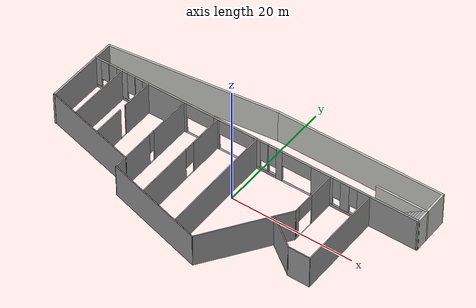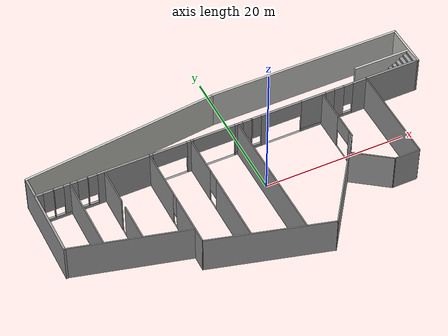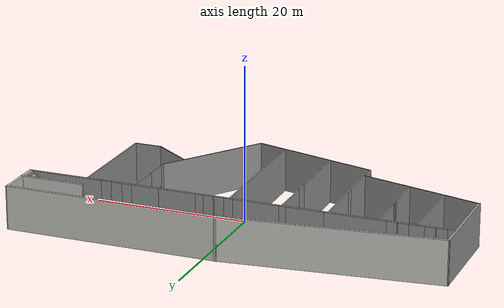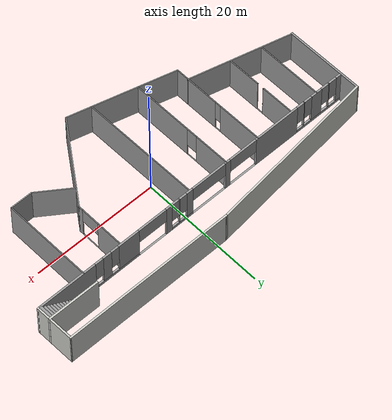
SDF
<?xml version='1.0'?>
<sdf version='1.7'>
  <model name='kmac'>
    <pose>-1.47936 -0.081565 0 0 -0 0</pose>
    <link name='Stairs_0'>
      <visual name='Stairs_0_Visual_0'>
        <pose>19.7778 8.04534 0.186667 0 -0 1.5708</pose>
        <geometry>
          <box>
            <size>2.003 0.5168 0.373333</size>
          </box>
        </geometry>
        <material>
          <script>
            <uri>file://media/materials/scripts/gazebo.material</uri>
            <name>Gazebo/Grey</name>
          </script>
          <ambient>0.870588 0.866667 0.854902 1</ambient>
        </material>
        <meta>
          <layer>0</layer>
        </meta>
      </visual>
      <collision name='Stairs_0_Collision_0'>
        <geometry>
          <box>
            <size>2.003 0.5168 0.373333</size>
          </box>
        </geometry>
        <pose>19.7778 8.04534 0.186667 0 -0 1.5708</pose>
      </collision>
      <visual name='Stairs_0_Visual_1'>
        <pose>20.2946 8.04534 0.56 0 -0 1.5708</pose>
        <geometry>
          <box>
            <size>2.003 0.5168 0.373333</size>
          </box>
        </geometry>
        <material>
          <script>
            <uri>file://media/materials/scripts/gazebo.material</uri>
            <name>Gazebo/Grey</name>
          </script>
          <ambient>0.870588 0.866667 0.854902 1</ambient>
        </material>
        <meta>
          <layer>0</layer>
        </meta>
      </visual>
      <collision name='Stairs_0_Collision_1'>
        <geometry>
          <box>
            <size>2.003 0.5168 0.373333</size>
          </box>
        </geometry>
        <pose>20.2946 8.04534 0.56 0 -0 1.5708</pose>
      </collision>
      <visual name='Stairs_0_Visual_2'>
        <pose>20.8114 8.04534 0.933333 0 -0 1.5708</pose>
        <geometry>
          <box>
            <size>2.003 0.5168 0.373333</size>
          </box>
        </geometry>
        <material>
          <script>
            <uri>file://media/materials/scripts/gazebo.material</uri>
            <name>Gazebo/Grey</name>
          </script>
          <ambient>0.870588 0.866667 0.854902 1</ambient>
        </material>
        <meta>
          <layer>0</layer>
        </meta>
      </visual>
      <collision name='Stairs_0_Collision_2'>
        <geometry>
          <box>
            <size>2.003 0.5168 0.373333</size>
          </box>
        </geometry>
        <pose>20.8114 8.04534 0.933333 0 -0 1.5708</pose>
      </collision>
      <visual name='Stairs_0_Visual_3'>
        <pose>21.3282 8.04534 1.30667 0 -0 1.5708</pose>
        <geometry>
          <box>
            <size>2.003 0.5168 0.373333</size>
          </box>
        </geometry>
        <material>
          <script>
            <uri>file://media/materials/scripts/gazebo.material</uri>
            <name>Gazebo/Grey</name>
          </script>
          <ambient>0.870588 0.866667 0.854902 1</ambient>
        </material>
        <meta>
          <layer>0</layer>
        </meta>
      </visual>
      <collision name='Stairs_0_Collision_3'>
        <geometry>
          <box>
            <size>2.003 0.5168 0.373333</size>
          </box>
        </geometry>
        <pose>21.3282 8.04534 1.30667 0 -0 1.5708</pose>
      </collision>
      <visual name='Stairs_0_Visual_4'>
        <pose>21.845 8.04534 1.68 0 -0 1.5708</pose>
        <geometry>
          <box>
            <size>2.003 0.5168 0.373333</size>
          </box>
        </geometry>
        <material>
          <script>
            <uri>file://media/materials/scripts/gazebo.material</uri>
            <name>Gazebo/Grey</name>
          </script>
          <ambient>0.870588 0.866667 0.854902 1</ambient>
        </material>
        <meta>
          <layer>0</layer>
        </meta>
      </visual>
      <collision name='Stairs_0_Collision_4'>
        <geometry>
          <box>
            <size>2.003 0.5168 0.373333</size>
          </box>
        </geometry>
        <pose>21.845 8.04534 1.68 0 -0 1.5708</pose>
      </collision>
      <visual name='Stairs_0_Visual_5'>
        <pose>22.3618 8.04535 2.05333 0 -0 1.5708</pose>
        <geometry>
          <box>
            <size>2.003 0.5168 0.373333</size>
          </box>
        </geometry>
        <material>
          <script>
            <uri>file://media/materials/scripts/gazebo.material</uri>
            <name>Gazebo/Grey</name>
          </script>
          <ambient>0.870588 0.866667 0.854902 1</ambient>
        </material>
        <meta>
          <layer>0</layer>
        </meta>
      </visual>
      <collision name='Stairs_0_Collision_5'>
        <geometry>
          <box>
            <size>2.003 0.5168 0.373333</size>
          </box>
        </geometry>
        <pose>22.3618 8.04535 2.05333 0 -0 1.5708</pose>
      </collision>
      <visual name='Stairs_0_Visual_6'>
        <pose>22.8786 8.04535 2.42667 0 -0 1.5708</pose>
        <geometry>
          <box>
            <size>2.003 0.5168 0.373333</size>
          </box>
        </geometry>
        <material>
          <script>
            <uri>file://media/materials/scripts/gazebo.material</uri>
            <name>Gazebo/Grey</name>
          </script>
          <ambient>0.870588 0.866667 0.854902 1</ambient>
        </material>
        <meta>
          <layer>0</layer>
        </meta>
      </visual>
      <collision name='Stairs_0_Collision_6'>
        <geometry>
          <box>
            <size>2.003 0.5168 0.373333</size>
          </box>
        </geometry>
        <pose>22.8786 8.04535 2.42667 0 -0 1.5708</pose>
      </collision>
      <visual name='Stairs_0_Visual_7'>
        <pose>23.3954 8.04535 2.8 0 -0 1.5708</pose>
        <geometry>
          <box>
            <size>2.003 0.5168 0.373333</size>
          </box>
        </geometry>
        <material>
          <script>
            <uri>file://media/materials/scripts/gazebo.material</uri>
            <name>Gazebo/Grey</name>
          </script>
          <ambient>0.870588 0.866667 0.854902 1</ambient>
        </material>
        <meta>
          <layer>0</layer>
        </meta>
      </visual>
      <collision name='Stairs_0_Collision_7'>
        <geometry>
          <box>
            <size>2.003 0.5168 0.373333</size>
          </box>
        </geometry>
        <pose>23.3954 8.04535 2.8 0 -0 1.5708</pose>
      </collision>
      <visual name='Stairs_0_Visual_8'>
        <pose>23.9122 8.04535 3.17333 0 -0 1.5708</pose>
        <geometry>
          <box>
            <size>2.003 0.5168 0.373333</size>
          </box>
        </geometry>
        <material>
          <script>
            <uri>file://media/materials/scripts/gazebo.material</uri>
            <name>Gazebo/Grey</name>
          </script>
          <ambient>0.870588 0.866667 0.854902 1</ambient>
        </material>
        <meta>
          <layer>0</layer>
        </meta>
      </visual>
      <collision name='Stairs_0_Collision_8'>
        <geometry>
          <box>
            <size>2.003 0.5168 0.373333</size>
          </box>
        </geometry>
        <pose>23.9122 8.04535 3.17333 0 -0 1.5708</pose>
      </collision>
      <visual name='Stairs_0_Visual_9'>
        <pose>24.429 8.04535 3.54667 0 -0 1.5708</pose>
        <geometry>
          <box>
            <size>2.003 0.5168 0.373333</size>
          </box>
        </geometry>
        <material>
          <script>
            <uri>file://media/materials/scripts/gazebo.material</uri>
            <name>Gazebo/Grey</name>
          </script>
          <ambient>0.870588 0.866667 0.854902 1</ambient>
        </material>
        <meta>
          <layer>0</layer>
        </meta>
      </visual>
      <collision name='Stairs_0_Collision_9'>
        <geometry>
          <box>
            <size>2.003 0.5168 0.373333</size>
          </box>
        </geometry>
        <pose>24.429 8.04535 3.54667 0 -0 1.5708</pose>
      </collision>
      <visual name='Stairs_0_Visual_10'>
        <pose>24.9458 8.04535 3.92 0 -0 1.5708</pose>
        <geometry>
          <box>
            <size>2.003 0.5168 0.373333</size>
          </box>
        </geometry>
        <material>
          <script>
            <uri>file://media/materials/scripts/gazebo.material</uri>
            <name>Gazebo/Grey</name>
          </script>
          <ambient>0.870588 0.866667 0.854902 1</ambient>
        </material>
        <meta>
          <layer>0</layer>
        </meta>
      </visual>
      <collision name='Stairs_0_Collision_10'>
        <geometry>
          <box>
            <size>2.003 0.5168 0.373333</size>
          </box>
        </geometry>
        <pose>24.9458 8.04535 3.92 0 -0 1.5708</pose>
      </collision>
      <visual name='Stairs_0_Visual_11'>
        <pose>25.4626 8.04535 4.29333 0 -0 1.5708</pose>
        <geometry>
          <box>
            <size>2.003 0.5168 0.373333</size>
          </box>
        </geometry>
        <material>
          <script>
            <uri>file://media/materials/scripts/gazebo.material</uri>
            <name>Gazebo/Grey</name>
          </script>
          <ambient>0.870588 0.866667 0.854902 1</ambient>
        </material>
        <meta>
          <layer>0</layer>
        </meta>
      </visual>
      <collision name='Stairs_0_Collision_11'>
        <geometry>
          <box>
            <size>2.003 0.5168 0.373333</size>
          </box>
        </geometry>
        <pose>25.4626 8.04535 4.29333 0 -0 1.5708</pose>
      </collision>
      <visual name='Stairs_0_Visual_12'>
        <pose>25.9794 8.04535 4.66667 0 -0 1.5708</pose>
        <geometry>
          <box>
            <size>2.003 0.5168 0.373333</size>
          </box>
        </geometry>
        <material>
          <script>
            <uri>file://media/materials/scripts/gazebo.material</uri>
            <name>Gazebo/Grey</name>
          </script>
          <ambient>0.870588 0.866667 0.854902 1</ambient>
        </material>
        <meta>
          <layer>0</layer>
        </meta>
      </visual>
      <collision name='Stairs_0_Collision_12'>
        <geometry>
          <box>
            <size>2.003 0.5168 0.373333</size>
          </box>
        </geometry>
        <pose>25.9794 8.04535 4.66667 0 -0 1.5708</pose>
      </collision>
      <visual name='Stairs_0_Visual_13'>
        <pose>26.4962 8.04535 5.04 0 -0 1.5708</pose>
        <geometry>
          <box>
            <size>2.003 0.5168 0.373333</size>
          </box>
        </geometry>
        <material>
          <script>
            <uri>file://media/materials/scripts/gazebo.material</uri>
            <name>Gazebo/Grey</name>
          </script>
          <ambient>0.870588 0.866667 0.854902 1</ambient>
        </material>
        <meta>
          <layer>0</layer>
        </meta>
      </visual>
      <collision name='Stairs_0_Collision_13'>
        <geometry>
          <box>
            <size>2.003 0.5168 0.373333</size>
          </box>
        </geometry>
        <pose>26.4962 8.04535 5.04 0 -0 1.5708</pose>
      </collision>
      <visual name='Stairs_0_Visual_14'>
        <pose>27.013 8.04535 5.41333 0 -0 1.5708</pose>
        <geometry>
          <box>
            <size>2.003 0.5168 0.373333</size>
          </box>
        </geometry>
        <material>
          <script>
            <uri>file://media/materials/scripts/gazebo.material</uri>
            <name>Gazebo/Grey</name>
          </script>
          <ambient>0.870588 0.866667 0.854902 1</ambient>
        </material>
        <meta>
          <layer>0</layer>
        </meta>
      </visual>
      <collision name='Stairs_0_Collision_14'>
        <geometry>
          <box>
            <size>2.003 0.5168 0.373333</size>
          </box>
        </geometry>
        <pose>27.013 8.04535 5.41333 0 -0 1.5708</pose>
      </collision>
    </link>
    <link name='Wall_0'>
      <collision name='Wall_0_Collision'>
        <geometry>
          <box>
            <size>12.75 0.3 5.6</size>
          </box>
        </geometry>
        <pose>0 0 2.8 0 -0 0</pose>
      </collision>
      <visual name='Wall_0_Visual'>
        <pose>0 0 2.8 0 -0 0</pose>
        <geometry>
          <box>
            <size>12.75 0.3 5.6</size>
          </box>
        </geometry>
        <material>
          <script>
            <uri>file://media/materials/scripts/gazebo.material</uri>
            <name>Gazebo/Grey</name>
          </script>
          <ambient>0.870588 0.866667 0.854902 1</ambient>
        </material>
        <meta>
          <layer>0</layer>
        </meta>
      </visual>
      <pose>-27.3226 3.61557 0 0 -0 -1.5708</pose>
    </link>
    <link name='Wall_11'>
      <collision name='Wall_11_Collision'>
        <geometry>
          <box>
            <size>14.25 0.15 5.6</size>
          </box>
        </geometry>
        <pose>0 0 2.8 0 -0 0</pose>
      </collision>
      <visual name='Wall_11_Visual'>
        <pose>0 0 2.8 0 -0 0</pose>
        <geometry>
          <box>
            <size>14.25 0.15 5.6</size>
          </box>
        </geometry>
        <material>
          <script>
            <uri>file://media/materials/scripts/gazebo.material</uri>
            <name>Gazebo/Grey</name>
          </script>
          <ambient>1 1 1 1</ambient>
        </material>
        <meta>
          <layer>0</layer>
        </meta>
      </visual>
      <pose>19.5414 -0.041435 0 0 -0 -1.5708</pose>
    </link>
    <link name='Wall_15'>
      <collision name='Wall_15_Collision'>
        <geometry>
          <box>
            <size>6.05535 0.15 5.6</size>
          </box>
        </geometry>
        <pose>0 0 2.8 0 -0 0</pose>
      </collision>
      <visual name='Wall_15_Visual'>
        <pose>0 0 2.8 0 -0 0</pose>
        <geometry>
          <box>
            <size>6.05535 0.15 5.6</size>
          </box>
        </geometry>
        <material>
          <script>
            <uri>file://media/materials/scripts/gazebo.material</uri>
            <name>Gazebo/Grey</name>
          </script>
          <ambient>0.870588 0.866667 0.854902 1</ambient>
        </material>
        <meta>
          <layer>0</layer>
        </meta>
      </visual>
      <pose>13.6484 -5.38943 0 0 -0 -0.62521</pose>
    </link>
    <link name='Wall_17'>
      <collision name='Wall_17_Collision'>
        <geometry>
          <box>
            <size>3.6 0.15 5.6</size>
          </box>
        </geometry>
        <pose>0 0 2.8 0 -0 0</pose>
      </collision>
      <visual name='Wall_17_Visual'>
        <pose>0 0 2.8 0 -0 0</pose>
        <geometry>
          <box>
            <size>3.6 0.15 5.6</size>
          </box>
        </geometry>
        <material>
          <script>
            <uri>file://media/materials/scripts/gazebo.material</uri>
            <name>Gazebo/Grey</name>
          </script>
          <ambient>1 1 1 1</ambient>
        </material>
        <meta>
          <layer>0</layer>
        </meta>
      </visual>
      <pose>17.7674 -7.11744 0 0 -0 0</pose>
    </link>
    <link name='Wall_2'>
      <collision name='Wall_2_Collision'>
        <geometry>
          <box>
            <size>16.3089 0.15 5.6</size>
          </box>
        </geometry>
        <pose>0 0 2.8 0 -0 0</pose>
      </collision>
      <visual name='Wall_2_Visual'>
        <pose>0 0 2.8 0 -0 0</pose>
        <geometry>
          <box>
            <size>16.3089 0.15 5.6</size>
          </box>
        </geometry>
        <material>
          <script>
            <uri>file://media/materials/scripts/gazebo.material</uri>
            <name>Gazebo/Grey</name>
          </script>
          <ambient>0.870588 0.866667 0.854902 1</ambient>
        </material>
        <meta>
          <layer>0</layer>
        </meta>
      </visual>
      <pose>-19.4986 -4.62493 0 0 -0 -0.252123</pose>
    </link>
    <link name='Wall_22'>
      <pose>0.037359 6.88506 0 0 -0 -3.1378</pose>
      <visual name='Wall_22_Visual_0'>
        <pose>-22.4813 0 2.8 0 -0 0</pose>
        <geometry>
          <box>
            <size>9.93689 0.3 5.6</size>
          </box>
        </geometry>
        <material>
          <script>
            <uri>file://media/materials/scripts/gazebo.material</uri>
            <name>Gazebo/Grey</name>
          </script>
          <ambient>0.466667 0.462745 0.482353 1</ambient>
        </material>
        <meta>
          <layer>0</layer>
        </meta>
      </visual>
      <collision name='Wall_22_Collision_0'>
        <geometry>
          <box>
            <size>9.93689 0.3 5.6</size>
          </box>
        </geometry>
        <pose>-22.4813 0 2.8 0 -0 0</pose>
      </collision>
      <visual name='Wall_22_Visual_1'>
        <pose>-4.52856 0 2.8 0 -0 0</pose>
        <geometry>
          <box>
            <size>1.01868 0.3 5.6</size>
          </box>
        </geometry>
        <material>
          <script>
            <uri>file://media/materials/scripts/gazebo.material</uri>
            <name>Gazebo/Grey</name>
          </script>
          <ambient>0.466667 0.462745 0.482353 1</ambient>
        </material>
        <meta>
          <layer>0</layer>
        </meta>
      </visual>
      <collision name='Wall_22_Collision_1'>
        <geometry>
          <box>
            <size>1.01868 0.3 5.6</size>
          </box>
        </geometry>
        <pose>-4.52856 0 2.8 0 -0 0</pose>
      </collision>
      <visual name='Wall_22_Visual_2'>
        <pose>6.12011 0 2.8 0 -0 0</pose>
        <geometry>
          <box>
            <size>0.892332 0.3 5.6</size>
          </box>
        </geometry>
        <material>
          <script>
            <uri>file://media/materials/scripts/gazebo.material</uri>
            <name>Gazebo/Grey</name>
          </script>
          <ambient>0.466667 0.462745 0.482353 1</ambient>
        </material>
        <meta>
          <layer>0</layer>
        </meta>
      </visual>
      <collision name='Wall_22_Collision_2'>
        <geometry>
          <box>
            <size>0.892332 0.3 5.6</size>
          </box>
        </geometry>
        <pose>6.12011 0 2.8 0 -0 0</pose>
      </collision>
      <visual name='Wall_22_Visual_3'>
        <pose>15.1728 0 2.8 0 -0 0</pose>
        <geometry>
          <box>
            <size>7.68309 0.3 5.6</size>
          </box>
        </geometry>
        <material>
          <script>
            <uri>file://media/materials/scripts/gazebo.material</uri>
            <name>Gazebo/Grey</name>
          </script>
          <ambient>0.466667 0.462745 0.482353 1</ambient>
        </material>
        <meta>
          <layer>0</layer>
        </meta>
      </visual>
      <collision name='Wall_22_Collision_3'>
        <geometry>
          <box>
            <size>7.68309 0.3 5.6</size>
          </box>
        </geometry>
        <pose>15.1728 0 2.8 0 -0 0</pose>
      </collision>
      <visual name='Wall_22_Visual_4'>
        <pose>-13.6964 0 0.25 0 -0 0</pose>
        <geometry>
          <box>
            <size>7.633 0.3 0.5</size>
          </box>
        </geometry>
        <material>
          <script>
            <uri>file://media/materials/scripts/gazebo.material</uri>
            <name>Gazebo/Grey</name>
          </script>
          <ambient>0.466667 0.462745 0.482353 1</ambient>
        </material>
        <meta>
          <layer>0</layer>
        </meta>
      </visual>
      <collision name='Wall_22_Collision_4'>
        <geometry>
          <box>
            <size>7.633 0.3 0.5</size>
          </box>
        </geometry>
        <pose>-13.6964 0 0.25 0 -0 0</pose>
      </collision>
      <visual name='Wall_22_Visual_5'>
        <pose>-2.11764 0 0.25 0 -0 0</pose>
        <geometry>
          <box>
            <size>3.80317 0.3 0.5</size>
          </box>
        </geometry>
        <material>
          <script>
            <uri>file://media/materials/scripts/gazebo.material</uri>
            <name>Gazebo/Grey</name>
          </script>
          <ambient>0.466667 0.462745 0.482353 1</ambient>
        </material>
        <meta>
          <layer>0</layer>
        </meta>
      </visual>
      <collision name='Wall_22_Collision_5'>
        <geometry>
          <box>
            <size>3.80317 0.3 0.5</size>
          </box>
        </geometry>
        <pose>-2.11764 0 0.25 0 -0 0</pose>
      </collision>
      <visual name='Wall_22_Visual_6'>
        <pose>8.94878 0 0 0 -0 0</pose>
        <geometry>
          <box>
            <size>4.765 0.3 0</size>
          </box>
        </geometry>
        <material>
          <script>
            <uri>file://media/materials/scripts/gazebo.material</uri>
            <name>Gazebo/Grey</name>
          </script>
          <ambient>0.466667 0.462745 0.482353 1</ambient>
        </material>
        <meta>
          <layer>0</layer>
        </meta>
      </visual>
      <collision name='Wall_22_Collision_6'>
        <geometry>
          <box>
            <size>4.765 0.3 0</size>
          </box>
        </geometry>
        <pose>8.94878 0 0 0 -0 0</pose>
      </collision>
      <visual name='Wall_22_Visual_7'>
        <pose>23.2321 0 0.25 0 -0 0</pose>
        <geometry>
          <box>
            <size>8.43542 0.3 0.5</size>
          </box>
        </geometry>
        <material>
          <script>
            <uri>file://media/materials/scripts/gazebo.material</uri>
            <name>Gazebo/Grey</name>
          </script>
          <ambient>0.466667 0.462745 0.482353 1</ambient>
        </material>
        <meta>
          <layer>0</layer>
        </meta>
      </visual>
      <collision name='Wall_22_Collision_7'>
        <geometry>
          <box>
            <size>8.43542 0.3 0.5</size>
          </box>
        </geometry>
        <pose>23.2321 0 0.25 0 -0 0</pose>
      </collision>
      <visual name='Wall_22_Visual_8'>
        <pose>-7.4589 0 0 0 -0 0</pose>
        <geometry>
          <box>
            <size>4.842 0.3 0</size>
          </box>
        </geometry>
        <material>
          <script>
            <uri>file://media/materials/scripts/gazebo.material</uri>
            <name>Gazebo/Grey</name>
          </script>
          <ambient>0.466667 0.462745 0.482353 1</ambient>
        </material>
        <meta>
          <layer>0</layer>
        </meta>
      </visual>
      <collision name='Wall_22_Collision_8'>
        <geometry>
          <box>
            <size>4.842 0.3 0</size>
          </box>
        </geometry>
        <pose>-7.4589 0 0 0 -0 0</pose>
      </collision>
      <visual name='Wall_22_Visual_9'>
        <pose>2.72894 0 0 0 -0 0</pose>
        <geometry>
          <box>
            <size>5.89 0.3 0</size>
          </box>
        </geometry>
        <material>
          <script>
            <uri>file://media/materials/scripts/gazebo.material</uri>
            <name>Gazebo/Grey</name>
          </script>
          <ambient>0.466667 0.462745 0.482353 1</ambient>
        </material>
        <meta>
          <layer>0</layer>
        </meta>
      </visual>
      <collision name='Wall_22_Collision_9'>
        <geometry>
          <box>
            <size>5.89 0.3 0</size>
          </box>
        </geometry>
        <pose>2.72894 0 0 0 -0 0</pose>
      </collision>
      <visual name='Wall_22_Visual_10'>
        <pose>-15.4653 0 3.05 0 -0 0</pose>
        <geometry>
          <box>
            <size>1.43327 0.3 5.1</size>
          </box>
        </geometry>
        <material>
          <script>
            <uri>file://media/materials/scripts/gazebo.material</uri>
            <name>Gazebo/Grey</name>
          </script>
          <ambient>0.466667 0.462745 0.482353 1</ambient>
        </material>
        <meta>
          <layer>0</layer>
        </meta>
      </visual>
      <collision name='Wall_22_Collision_10'>
        <geometry>
          <box>
            <size>1.43327 0.3 5.1</size>
          </box>
        </geometry>
        <pose>-15.4653 0 3.05 0 -0 0</pose>
      </collision>
      <visual name='Wall_22_Visual_11'>
        <pose>-11.6743 0 3.05 0 -0 0</pose>
        <geometry>
          <box>
            <size>3.58878 0.3 5.1</size>
          </box>
        </geometry>
        <material>
          <script>
            <uri>file://media/materials/scripts/gazebo.material</uri>
            <name>Gazebo/Grey</name>
          </script>
          <ambient>0.466667 0.462745 0.482353 1</ambient>
        </material>
        <meta>
          <layer>0</layer>
        </meta>
      </visual>
      <collision name='Wall_22_Collision_11'>
        <geometry>
          <box>
            <size>3.58878 0.3 5.1</size>
          </box>
        </geometry>
        <pose>-11.6743 0 3.05 0 -0 0</pose>
      </collision>
      <visual name='Wall_22_Visual_12'>
        <pose>-11.6743 0 3.05 0 -0 0</pose>
        <geometry>
          <box>
            <size>3.58878 0.3 5.1</size>
          </box>
        </geometry>
        <material>
          <script>
            <uri>file://media/materials/scripts/gazebo.material</uri>
            <name>Gazebo/Grey</name>
          </script>
          <ambient>0.466667 0.462745 0.482353 1</ambient>
        </material>
        <meta>
          <layer>0</layer>
        </meta>
      </visual>
      <collision name='Wall_22_Collision_12'>
        <geometry>
          <box>
            <size>3.58878 0.3 5.1</size>
          </box>
        </geometry>
        <pose>-11.6743 0 3.05 0 -0 0</pose>
      </collision>
      <visual name='Wall_22_Visual_13'>
        <pose>-2.66522 0 3.05 0 -0 0</pose>
        <geometry>
          <box>
            <size>0.148123 0.3 5.1</size>
          </box>
        </geometry>
        <material>
          <script>
            <uri>file://media/materials/scripts/gazebo.material</uri>
            <name>Gazebo/Grey</name>
          </script>
          <ambient>0.466667 0.462745 0.482353 1</ambient>
        </material>
        <meta>
          <layer>0</layer>
        </meta>
      </visual>
      <collision name='Wall_22_Collision_13'>
        <geometry>
          <box>
            <size>0.148123 0.3 5.1</size>
          </box>
        </geometry>
        <pose>-2.66522 0 3.05 0 -0 0</pose>
      </collision>
      <visual name='Wall_22_Visual_14'>
        <pose>-0.783824 0 3.05 0 -0 0</pose>
        <geometry>
          <box>
            <size>1.13554 0.3 5.1</size>
          </box>
        </geometry>
        <material>
          <script>
            <uri>file://media/materials/scripts/gazebo.material</uri>
            <name>Gazebo/Grey</name>
          </script>
          <ambient>0.466667 0.462745 0.482353 1</ambient>
        </material>
        <meta>
          <layer>0</layer>
        </meta>
      </visual>
      <collision name='Wall_22_Collision_14'>
        <geometry>
          <box>
            <size>1.13554 0.3 5.1</size>
          </box>
        </geometry>
        <pose>-0.783824 0 3.05 0 -0 0</pose>
      </collision>
      <visual name='Wall_22_Visual_15'>
        <pose>-0.783824 0 3.05 0 -0 0</pose>
        <geometry>
          <box>
            <size>1.13554 0.3 5.1</size>
          </box>
        </geometry>
        <material>
          <script>
            <uri>file://media/materials/scripts/gazebo.material</uri>
            <name>Gazebo/Grey</name>
          </script>
          <ambient>0.466667 0.462745 0.482353 1</ambient>
        </material>
        <meta>
          <layer>0</layer>
        </meta>
      </visual>
      <collision name='Wall_22_Collision_15'>
        <geometry>
          <box>
            <size>1.13554 0.3 5.1</size>
          </box>
        </geometry>
        <pose>-0.783824 0 3.05 0 -0 0</pose>
      </collision>
      <visual name='Wall_22_Visual_16'>
        <pose>20.3184 0 3.05 0 -0 0</pose>
        <geometry>
          <box>
            <size>0.096001 0.3 5.1</size>
          </box>
        </geometry>
        <material>
          <script>
            <uri>file://media/materials/scripts/gazebo.material</uri>
            <name>Gazebo/Grey</name>
          </script>
          <ambient>0.466667 0.462745 0.482353 1</ambient>
        </material>
        <meta>
          <layer>0</layer>
        </meta>
      </visual>
      <collision name='Wall_22_Collision_16'>
        <geometry>
          <box>
            <size>0.096001 0.3 5.1</size>
          </box>
        </geometry>
        <pose>20.3184 0 3.05 0 -0 0</pose>
      </collision>
      <visual name='Wall_22_Visual_17'>
        <pose>22.6462 0 3.05 0 -0 0</pose>
        <geometry>
          <box>
            <size>1.89161 0.3 5.1</size>
          </box>
        </geometry>
        <material>
          <script>
            <uri>file://media/materials/scripts/gazebo.material</uri>
            <name>Gazebo/Grey</name>
          </script>
          <ambient>0.466667 0.462745 0.482353 1</ambient>
        </material>
        <meta>
          <layer>0</layer>
        </meta>
      </visual>
      <collision name='Wall_22_Collision_17'>
        <geometry>
          <box>
            <size>1.89161 0.3 5.1</size>
          </box>
        </geometry>
        <pose>22.6462 0 3.05 0 -0 0</pose>
      </collision>
      <visual name='Wall_22_Visual_18'>
        <pose>24.9436 0 3.05 0 -0 0</pose>
        <geometry>
          <box>
            <size>0.109286 0.3 5.1</size>
          </box>
        </geometry>
        <material>
          <script>
            <uri>file://media/materials/scripts/gazebo.material</uri>
            <name>Gazebo/Grey</name>
          </script>
          <ambient>0.466667 0.462745 0.482353 1</ambient>
        </material>
        <meta>
          <layer>0</layer>
        </meta>
      </visual>
      <collision name='Wall_22_Collision_18'>
        <geometry>
          <box>
            <size>0.109286 0.3 5.1</size>
          </box>
        </geometry>
        <pose>24.9436 0 3.05 0 -0 0</pose>
      </collision>
      <visual name='Wall_22_Visual_19'>
        <pose>26.8994 0 3.05 0 -0 0</pose>
        <geometry>
          <box>
            <size>1.10078 0.3 5.1</size>
          </box>
        </geometry>
        <material>
          <script>
            <uri>file://media/materials/scripts/gazebo.material</uri>
            <name>Gazebo/Grey</name>
          </script>
          <ambient>0.466667 0.462745 0.482353 1</ambient>
        </material>
        <meta>
          <layer>0</layer>
        </meta>
      </visual>
      <collision name='Wall_22_Collision_19'>
        <geometry>
          <box>
            <size>1.10078 0.3 5.1</size>
          </box>
        </geometry>
        <pose>26.8994 0 3.05 0 -0 0</pose>
      </collision>
      <visual name='Wall_22_Visual_20'>
        <pose>-16.8474 0 3.8 0 -0 0</pose>
        <geometry>
          <box>
            <size>1.33095 0.3 3.6</size>
          </box>
        </geometry>
        <material>
          <script>
            <uri>file://media/materials/scripts/gazebo.material</uri>
            <name>Gazebo/Grey</name>
          </script>
          <ambient>0.466667 0.462745 0.482353 1</ambient>
        </material>
        <meta>
          <layer>0</layer>
        </meta>
      </visual>
      <collision name='Wall_22_Collision_20'>
        <geometry>
          <box>
            <size>1.33095 0.3 3.6</size>
          </box>
        </geometry>
        <pose>-16.8474 0 3.8 0 -0 0</pose>
      </collision>
      <visual name='Wall_22_Visual_21'>
        <pose>-3.37925 0 3.8 0 -0 0</pose>
        <geometry>
          <box>
            <size>1.27994 0.3 3.6</size>
          </box>
        </geometry>
        <material>
          <script>
            <uri>file://media/materials/scripts/gazebo.material</uri>
            <name>Gazebo/Grey</name>
          </script>
          <ambient>0.466667 0.462745 0.482353 1</ambient>
        </material>
        <meta>
          <layer>0</layer>
        </meta>
      </visual>
      <collision name='Wall_22_Collision_21'>
        <geometry>
          <box>
            <size>1.27994 0.3 3.6</size>
          </box>
        </geometry>
        <pose>-3.37925 0 3.8 0 -0 0</pose>
      </collision>
      <visual name='Wall_22_Visual_22'>
        <pose>19.6424 0 3.8 0 -0 0</pose>
        <geometry>
          <box>
            <size>1.256 0.3 3.6</size>
          </box>
        </geometry>
        <material>
          <script>
            <uri>file://media/materials/scripts/gazebo.material</uri>
            <name>Gazebo/Grey</name>
          </script>
          <ambient>0.466667 0.462745 0.482353 1</ambient>
        </material>
        <meta>
          <layer>0</layer>
        </meta>
      </visual>
      <collision name='Wall_22_Collision_22'>
        <geometry>
          <box>
            <size>1.256 0.3 3.6</size>
          </box>
        </geometry>
        <pose>19.6424 0 3.8 0 -0 0</pose>
      </collision>
      <visual name='Wall_22_Visual_23'>
        <pose>-14.1087 0 3.8 0 -0 0</pose>
        <geometry>
          <box>
            <size>1.28 0.3 3.6</size>
          </box>
        </geometry>
        <material>
          <script>
            <uri>file://media/materials/scripts/gazebo.material</uri>
            <name>Gazebo/Grey</name>
          </script>
          <ambient>0.466667 0.462745 0.482353 1</ambient>
        </material>
        <meta>
          <layer>0</layer>
        </meta>
      </visual>
      <collision name='Wall_22_Collision_23'>
        <geometry>
          <box>
            <size>1.28 0.3 3.6</size>
          </box>
        </geometry>
        <pose>-14.1087 0 3.8 0 -0 0</pose>
      </collision>
      <visual name='Wall_22_Visual_24'>
        <pose>-1.97138 0 3.8 0 -0 0</pose>
        <geometry>
          <box>
            <size>1.23957 0.3 3.6</size>
          </box>
        </geometry>
        <material>
          <script>
            <uri>file://media/materials/scripts/gazebo.material</uri>
            <name>Gazebo/Grey</name>
          </script>
          <ambient>0.466667 0.462745 0.482353 1</ambient>
        </material>
        <meta>
          <layer>0</layer>
        </meta>
      </visual>
      <collision name='Wall_22_Collision_24'>
        <geometry>
          <box>
            <size>1.23957 0.3 3.6</size>
          </box>
        </geometry>
        <pose>-1.97138 0 3.8 0 -0 0</pose>
      </collision>
      <visual name='Wall_22_Visual_25'>
        <pose>21.0334 0 3.8 0 -0 0</pose>
        <geometry>
          <box>
            <size>1.334 0.3 3.6</size>
          </box>
        </geometry>
        <material>
          <script>
            <uri>file://media/materials/scripts/gazebo.material</uri>
            <name>Gazebo/Grey</name>
          </script>
          <ambient>0.466667 0.462745 0.482353 1</ambient>
        </material>
        <meta>
          <layer>0</layer>
        </meta>
      </visual>
      <collision name='Wall_22_Collision_25'>
        <geometry>
          <box>
            <size>1.334 0.3 3.6</size>
          </box>
        </geometry>
        <pose>21.0334 0 3.8 0 -0 0</pose>
      </collision>
      <visual name='Wall_22_Visual_26'>
        <pose>24.2405 0 3.8 0 -0 0</pose>
        <geometry>
          <box>
            <size>1.297 0.3 3.6</size>
          </box>
        </geometry>
        <material>
          <script>
            <uri>file://media/materials/scripts/gazebo.material</uri>
            <name>Gazebo/Grey</name>
          </script>
          <ambient>0.466667 0.462745 0.482353 1</ambient>
        </material>
        <meta>
          <layer>0</layer>
        </meta>
      </visual>
      <collision name='Wall_22_Collision_26'>
        <geometry>
          <box>
            <size>1.297 0.3 3.6</size>
          </box>
        </geometry>
        <pose>24.2405 0 3.8 0 -0 0</pose>
      </collision>
      <visual name='Wall_22_Visual_27'>
        <pose>25.6736 0 3.8 0 -0 0</pose>
        <geometry>
          <box>
            <size>1.35075 0.3 3.6</size>
          </box>
        </geometry>
        <material>
          <script>
            <uri>file://media/materials/scripts/gazebo.material</uri>
            <name>Gazebo/Grey</name>
          </script>
          <ambient>0.466667 0.462745 0.482353 1</ambient>
        </material>
        <meta>
          <layer>0</layer>
        </meta>
      </visual>
      <collision name='Wall_22_Collision_27'>
        <geometry>
          <box>
            <size>1.35075 0.3 3.6</size>
          </box>
        </geometry>
        <pose>25.6736 0 3.8 0 -0 0</pose>
      </collision>
      <visual name='Wall_22_Visual_28'>
        <pose>8.94878 0 4.3 0 -0 0</pose>
        <geometry>
          <box>
            <size>4.765 0.3 2.6</size>
          </box>
        </geometry>
        <material>
          <script>
            <uri>file://media/materials/scripts/gazebo.material</uri>
            <name>Gazebo/Grey</name>
          </script>
          <ambient>0.466667 0.462745 0.482353 1</ambient>
        </material>
        <meta>
          <layer>0</layer>
        </meta>
      </visual>
      <collision name='Wall_22_Collision_28'>
        <geometry>
          <box>
            <size>4.765 0.3 2.6</size>
          </box>
        </geometry>
        <pose>8.94878 0 4.3 0 -0 0</pose>
      </collision>
      <visual name='Wall_22_Visual_29'>
        <pose>-7.4589 0 4.3 0 -0 0</pose>
        <geometry>
          <box>
            <size>4.842 0.3 2.6</size>
          </box>
        </geometry>
        <material>
          <script>
            <uri>file://media/materials/scripts/gazebo.material</uri>
            <name>Gazebo/Grey</name>
          </script>
          <ambient>0.466667 0.462745 0.482353 1</ambient>
        </material>
        <meta>
          <layer>0</layer>
        </meta>
      </visual>
      <collision name='Wall_22_Collision_29'>
        <geometry>
          <box>
            <size>4.842 0.3 2.6</size>
          </box>
        </geometry>
        <pose>-7.4589 0 4.3 0 -0 0</pose>
      </collision>
      <visual name='Wall_22_Visual_30'>
        <pose>-7.4589 0 4.3 0 -0 0</pose>
        <geometry>
          <box>
            <size>4.842 0.3 2.6</size>
          </box>
        </geometry>
        <material>
          <script>
            <uri>file://media/materials/scripts/gazebo.material</uri>
            <name>Gazebo/Grey</name>
          </script>
          <ambient>0.466667 0.462745 0.482353 1</ambient>
        </material>
        <meta>
          <layer>0</layer>
        </meta>
      </visual>
      <collision name='Wall_22_Collision_30'>
        <geometry>
          <box>
            <size>4.842 0.3 2.6</size>
          </box>
        </geometry>
        <pose>-7.4589 0 4.3 0 -0 0</pose>
      </collision>
      <visual name='Wall_22_Visual_31'>
        <pose>2.72894 0 4.3 0 -0 0</pose>
        <geometry>
          <box>
            <size>5.89 0.3 2.6</size>
          </box>
        </geometry>
        <material>
          <script>
            <uri>file://media/materials/scripts/gazebo.material</uri>
            <name>Gazebo/Grey</name>
          </script>
          <ambient>0.466667 0.462745 0.482353 1</ambient>
        </material>
        <meta>
          <layer>0</layer>
        </meta>
      </visual>
      <collision name='Wall_22_Collision_31'>
        <geometry>
          <box>
            <size>5.89 0.3 2.6</size>
          </box>
        </geometry>
        <pose>2.72894 0 4.3 0 -0 0</pose>
      </collision>
      <visual name='Wall_22_Visual_32'>
        <pose>2.72894 0 4.3 0 -0 0</pose>
        <geometry>
          <box>
            <size>5.89 0.3 2.6</size>
          </box>
        </geometry>
        <material>
          <script>
            <uri>file://media/materials/scripts/gazebo.material</uri>
            <name>Gazebo/Grey</name>
          </script>
          <ambient>0.466667 0.462745 0.482353 1</ambient>
        </material>
        <meta>
          <layer>0</layer>
        </meta>
      </visual>
      <collision name='Wall_22_Collision_32'>
        <geometry>
          <box>
            <size>5.89 0.3 2.6</size>
          </box>
        </geometry>
        <pose>2.72894 0 4.3 0 -0 0</pose>
      </collision>
    </link>
    <link name='Wall_25'>
      <collision name='Wall_25_Collision'>
        <geometry>
          <box>
            <size>6.4 0.3 5.6</size>
          </box>
        </geometry>
        <pose>0 0 2.8 0 -0 0</pose>
      </collision>
      <visual name='Wall_25_Visual'>
        <pose>0 0 2.8 0 -0 0</pose>
        <geometry>
          <box>
            <size>6.4 0.3 5.6</size>
          </box>
        </geometry>
        <material>
          <script>
            <uri>file://media/materials/scripts/gazebo.material</uri>
            <name>Gazebo/CeilingTiled</name>
          </script>
          <ambient>1 1 1 1</ambient>
        </material>
        <meta>
          <layer>0</layer>
        </meta>
      </visual>
      <pose>27.3084 10.0386 0 0 -0 1.5803</pose>
    </link>
    <link name='Wall_26'>
      <collision name='Wall_26_Collision'>
        <geometry>
          <box>
            <size>27.5922 0.3 5.6</size>
          </box>
        </geometry>
        <pose>0 0 2.8 0 -0 0</pose>
      </collision>
      <visual name='Wall_26_Visual'>
        <pose>0 0 2.8 0 -0 0</pose>
        <geometry>
          <box>
            <size>27.5922 0.3 5.6</size>
          </box>
        </geometry>
        <material>
          <script>
            <uri>file://media/materials/scripts/gazebo.material</uri>
            <name>Gazebo/CeilingTiled</name>
          </script>
          <ambient>1 1 1 1</ambient>
        </material>
        <meta>
          <layer>0</layer>
        </meta>
      </visual>
      <pose>13.6334 13.0351 0 0 -0 -3.13767</pose>
    </link>
    <link name='Wall_28'>
      <collision name='Wall_28_Collision'>
        <geometry>
          <box>
            <size>27.8298 0.3 5.6</size>
          </box>
        </geometry>
        <pose>0 0 2.8 0 -0 0</pose>
      </collision>
      <visual name='Wall_28_Visual'>
        <pose>0 0 2.8 0 -0 0</pose>
        <geometry>
          <box>
            <size>27.8298 0.3 5.6</size>
          </box>
        </geometry>
        <material>
          <script>
            <uri>file://media/materials/scripts/gazebo.material</uri>
            <name>Gazebo/CeilingTiled</name>
          </script>
          <ambient>1 1 1 1</ambient>
        </material>
        <meta>
          <layer>0</layer>
        </meta>
      </visual>
      <pose>-13.6476 11.4111 0 0 -0 0.114344</pose>
    </link>
    <link name='Wall_32'>
      <collision name='Wall_32_Collision'>
        <geometry>
          <box>
            <size>10.7 0.15 5.6</size>
          </box>
        </geometry>
        <pose>0 0 2.8 0 -0 0</pose>
      </collision>
      <visual name='Wall_32_Visual'>
        <pose>0 0 2.8 0 -0 0</pose>
        <geometry>
          <box>
            <size>10.7 0.15 5.6</size>
          </box>
        </geometry>
        <material>
          <script>
            <uri>file://media/materials/scripts/gazebo.material</uri>
            <name>Gazebo/Grey</name>
          </script>
          <ambient>0.870588 0.866667 0.854902 1</ambient>
        </material>
        <meta>
          <layer>0</layer>
        </meta>
      </visual>
      <pose>-22.6516 1.55256 0 0 -0 1.5708</pose>
    </link>
    <link name='Wall_34'>
      <pose>-17.9726 0.902565 0 0 -0 -1.5708</pose>
      <visual name='Wall_34_Visual_0'>
        <pose>-3.18238 0 2.8 0 -0 0</pose>
        <geometry>
          <box>
            <size>5.38524 0.15 5.6</size>
          </box>
        </geometry>
        <material>
          <script>
            <uri>file://media/materials/scripts/gazebo.material</uri>
            <name>Gazebo/Grey</name>
          </script>
          <ambient>0.870588 0.866667 0.854902 1</ambient>
        </material>
        <meta>
          <layer>0</layer>
        </meta>
      </visual>
      <collision name='Wall_34_Collision_0'>
        <geometry>
          <box>
            <size>5.38524 0.15 5.6</size>
          </box>
        </geometry>
        <pose>-3.18238 0 2.8 0 -0 0</pose>
      </collision>
      <visual name='Wall_34_Visual_1'>
        <pose>3.18464 0 0 0 -0 0</pose>
        <geometry>
          <box>
            <size>5.38073 0.15 0</size>
          </box>
        </geometry>
        <material>
          <script>
            <uri>file://media/materials/scripts/gazebo.material</uri>
            <name>Gazebo/Grey</name>
          </script>
          <ambient>0.870588 0.866667 0.854902 1</ambient>
        </material>
        <meta>
          <layer>0</layer>
        </meta>
      </visual>
      <collision name='Wall_34_Collision_1'>
        <geometry>
          <box>
            <size>5.38073 0.15 0</size>
          </box>
        </geometry>
        <pose>3.18464 0 0 0 -0 0</pose>
      </collision>
      <visual name='Wall_34_Visual_2'>
        <pose>3.20771 0 2.8 0 -0 0</pose>
        <geometry>
          <box>
            <size>5.33458 0.15 5.6</size>
          </box>
        </geometry>
        <material>
          <script>
            <uri>file://media/materials/scripts/gazebo.material</uri>
            <name>Gazebo/Grey</name>
          </script>
          <ambient>0.870588 0.866667 0.854902 1</ambient>
        </material>
        <meta>
          <layer>0</layer>
        </meta>
      </visual>
      <collision name='Wall_34_Collision_2'>
        <geometry>
          <box>
            <size>5.33458 0.15 5.6</size>
          </box>
        </geometry>
        <pose>3.20771 0 2.8 0 -0 0</pose>
      </collision>
      <visual name='Wall_34_Visual_3'>
        <pose>0.002258 0 0 0 -0 0</pose>
        <geometry>
          <box>
            <size>0.984031 0.15 0</size>
          </box>
        </geometry>
        <material>
          <script>
            <uri>file://media/materials/scripts/gazebo.material</uri>
            <name>Gazebo/Grey</name>
          </script>
          <ambient>0.870588 0.866667 0.854902 1</ambient>
        </material>
        <meta>
          <layer>0</layer>
        </meta>
      </visual>
      <collision name='Wall_34_Collision_3'>
        <geometry>
          <box>
            <size>0.984031 0.15 0</size>
          </box>
        </geometry>
        <pose>0.002258 0 0 0 -0 0</pose>
      </collision>
      <visual name='Wall_34_Visual_4'>
        <pose>3.20771 0 2.8 0 -0 0</pose>
        <geometry>
          <box>
            <size>5.33458 0.15 5.6</size>
          </box>
        </geometry>
        <material>
          <script>
            <uri>file://media/materials/scripts/gazebo.material</uri>
            <name>Gazebo/Grey</name>
          </script>
          <ambient>0.870588 0.866667 0.854902 1</ambient>
        </material>
        <meta>
          <layer>0</layer>
        </meta>
      </visual>
      <collision name='Wall_34_Collision_4'>
        <geometry>
          <box>
            <size>5.33458 0.15 5.6</size>
          </box>
        </geometry>
        <pose>3.20771 0 2.8 0 -0 0</pose>
      </collision>
      <visual name='Wall_34_Visual_5'>
        <pose>-0.479921 0 3.8 0 -0 0</pose>
        <geometry>
          <box>
            <size>0.019672 0.15 3.6</size>
          </box>
        </geometry>
        <material>
          <script>
            <uri>file://media/materials/scripts/gazebo.material</uri>
            <name>Gazebo/Grey</name>
          </script>
          <ambient>0.870588 0.866667 0.854902 1</ambient>
        </material>
        <meta>
          <layer>0</layer>
        </meta>
      </visual>
      <collision name='Wall_34_Collision_5'>
        <geometry>
          <box>
            <size>0.019672 0.15 3.6</size>
          </box>
        </geometry>
        <pose>-0.479921 0 3.8 0 -0 0</pose>
      </collision>
    </link>
    <link name='Wall_36'>
      <pose>-11.6976 0.120565 0 0 -0 -1.56739</pose>
      <visual name='Wall_36_Visual_0'>
        <pose>-3.2069 0 2.8 0 -0 0</pose>
        <geometry>
          <box>
            <size>7.25827 0.15 5.6</size>
          </box>
        </geometry>
        <material>
          <script>
            <uri>file://media/materials/scripts/gazebo.material</uri>
            <name>Gazebo/Grey</name>
          </script>
          <ambient>0.870588 0.866667 0.854902 1</ambient>
        </material>
        <meta>
          <layer>0</layer>
        </meta>
      </visual>
      <collision name='Wall_36_Collision_0'>
        <geometry>
          <box>
            <size>7.25827 0.15 5.6</size>
          </box>
        </geometry>
        <pose>-3.2069 0 2.8 0 -0 0</pose>
      </collision>
      <visual name='Wall_36_Visual_1'>
        <pose>4.10968 0 2.8 0 -0 0</pose>
        <geometry>
          <box>
            <size>5.45272 0.15 5.6</size>
          </box>
        </geometry>
        <material>
          <script>
            <uri>file://media/materials/scripts/gazebo.material</uri>
            <name>Gazebo/Grey</name>
          </script>
          <ambient>0.870588 0.866667 0.854902 1</ambient>
        </material>
        <meta>
          <layer>0</layer>
        </meta>
      </visual>
      <collision name='Wall_36_Collision_1'>
        <geometry>
          <box>
            <size>5.45272 0.15 5.6</size>
          </box>
        </geometry>
        <pose>4.10968 0 2.8 0 -0 0</pose>
      </collision>
      <visual name='Wall_36_Visual_2'>
        <pose>0.902773 0 0 0 -0 0</pose>
        <geometry>
          <box>
            <size>0.961085 0.15 0</size>
          </box>
        </geometry>
        <material>
          <script>
            <uri>file://media/materials/scripts/gazebo.material</uri>
            <name>Gazebo/Grey</name>
          </script>
          <ambient>0.870588 0.866667 0.854902 1</ambient>
        </material>
        <meta>
          <layer>0</layer>
        </meta>
      </visual>
      <collision name='Wall_36_Collision_2'>
        <geometry>
          <box>
            <size>0.961085 0.15 0</size>
          </box>
        </geometry>
        <pose>0.902773 0 0 0 -0 0</pose>
      </collision>
      <visual name='Wall_36_Visual_3'>
        <pose>0.902773 0 3.8 0 -0 0</pose>
        <geometry>
          <box>
            <size>0.961085 0.15 3.6</size>
          </box>
        </geometry>
        <material>
          <script>
            <uri>file://media/materials/scripts/gazebo.material</uri>
            <name>Gazebo/Grey</name>
          </script>
          <ambient>0.870588 0.866667 0.854902 1</ambient>
        </material>
        <meta>
          <layer>0</layer>
        </meta>
      </visual>
      <collision name='Wall_36_Collision_3'>
        <geometry>
          <box>
            <size>0.961085 0.15 3.6</size>
          </box>
        </geometry>
        <pose>0.902773 0 3.8 0 -0 0</pose>
      </collision>
    </link>
    <link name='Wall_39'>
      <pose>-5.90564 -1.67843 0 0 -0 -1.5667</pose>
      <visual name='Wall_39_Visual_0'>
        <pose>-5.71001 0 2.8 0 -0 0</pose>
        <geometry>
          <box>
            <size>5.83005 0.15 5.6</size>
          </box>
        </geometry>
        <material>
          <script>
            <uri>file://media/materials/scripts/gazebo.material</uri>
            <name>Gazebo/Grey</name>
          </script>
          <ambient>1 1 1 1</ambient>
        </material>
        <meta>
          <layer>0</layer>
        </meta>
      </visual>
      <collision name='Wall_39_Collision_0'>
        <geometry>
          <box>
            <size>5.83005 0.15 5.6</size>
          </box>
        </geometry>
        <pose>-5.71001 0 2.8 0 -0 0</pose>
      </collision>
      <visual name='Wall_39_Visual_1'>
        <pose>3.78053 0 2.8 0 -0 0</pose>
        <geometry>
          <box>
            <size>9.68902 0.15 5.6</size>
          </box>
        </geometry>
        <material>
          <script>
            <uri>file://media/materials/scripts/gazebo.material</uri>
            <name>Gazebo/Grey</name>
          </script>
          <ambient>1 1 1 1</ambient>
        </material>
        <meta>
          <layer>0</layer>
        </meta>
      </visual>
      <collision name='Wall_39_Collision_1'>
        <geometry>
          <box>
            <size>9.68902 0.15 5.6</size>
          </box>
        </geometry>
        <pose>3.78053 0 2.8 0 -0 0</pose>
      </collision>
      <visual name='Wall_39_Visual_2'>
        <pose>-1.92948 0 0 0 -0 0</pose>
        <geometry>
          <box>
            <size>1.731 0.15 0</size>
          </box>
        </geometry>
        <material>
          <script>
            <uri>file://media/materials/scripts/gazebo.material</uri>
            <name>Gazebo/Grey</name>
          </script>
          <ambient>1 1 1 1</ambient>
        </material>
        <meta>
          <layer>0</layer>
        </meta>
      </visual>
      <collision name='Wall_39_Collision_2'>
        <geometry>
          <box>
            <size>1.731 0.15 0</size>
          </box>
        </geometry>
        <pose>-1.92948 0 0 0 -0 0</pose>
      </collision>
      <visual name='Wall_39_Visual_3'>
        <pose>-1.92948 0 3.8 0 -0 0</pose>
        <geometry>
          <box>
            <size>1.731 0.15 3.6</size>
          </box>
        </geometry>
        <material>
          <script>
            <uri>file://media/materials/scripts/gazebo.material</uri>
            <name>Gazebo/Grey</name>
          </script>
          <ambient>1 1 1 1</ambient>
        </material>
        <meta>
          <layer>0</layer>
        </meta>
      </visual>
      <collision name='Wall_39_Collision_3'>
        <geometry>
          <box>
            <size>1.731 0.15 3.6</size>
          </box>
        </geometry>
        <pose>-1.92948 0 3.8 0 -0 0</pose>
      </collision>
    </link>
    <link name='Wall_4'>
      <collision name='Wall_4_Collision'>
        <geometry>
          <box>
            <size>2.25 0.15 5.6</size>
          </box>
        </geometry>
        <pose>0 0 2.8 0 -0 0</pose>
      </collision>
      <visual name='Wall_4_Visual'>
        <pose>0 0 2.8 0 -0 0</pose>
        <geometry>
          <box>
            <size>2.25 0.15 5.6</size>
          </box>
        </geometry>
        <material>
          <script>
            <uri>file://media/materials/scripts/gazebo.material</uri>
            <name>Gazebo/Grey</name>
          </script>
          <ambient>1 1 1 1</ambient>
        </material>
        <meta>
          <layer>0</layer>
        </meta>
      </visual>
      <pose>-11.6791 -7.69043 0 0 -0 -1.57508</pose>
    </link>
    <link name='Wall_41'>
      <collision name='Wall_41_Collision'>
        <geometry>
          <box>
            <size>18.999 0.15 5.6</size>
          </box>
        </geometry>
        <pose>0 0 2.8 0 -0 0</pose>
      </collision>
      <visual name='Wall_41_Visual'>
        <pose>0 0 2.8 0 -0 0</pose>
        <geometry>
          <box>
            <size>18.999 0.15 5.6</size>
          </box>
        </geometry>
        <material>
          <script>
            <uri>file://media/materials/scripts/gazebo.material</uri>
            <name>Gazebo/Grey</name>
          </script>
          <ambient>0.870588 0.866667 0.854902 1</ambient>
        </material>
        <meta>
          <layer>0</layer>
        </meta>
      </visual>
      <pose>0.804859 -2.64243 0 0 -0 -1.56279</pose>
    </link>
    <link name='Wall_43'>
      <collision name='Wall_43_Collision'>
        <geometry>
          <box>
            <size>8.4 0.3 5.6</size>
          </box>
        </geometry>
        <pose>0 0 2.8 0 -0 0</pose>
      </collision>
      <visual name='Wall_43_Visual'>
        <pose>0 0 2.8 0 -0 0</pose>
        <geometry>
          <box>
            <size>8.4 0.3 5.6</size>
          </box>
        </geometry>
        <material>
          <script>
            <uri>file://media/materials/scripts/gazebo.material</uri>
            <name>Gazebo/CeilingTiled</name>
          </script>
          <ambient>1 1 1 1</ambient>
        </material>
        <meta>
          <layer>0</layer>
        </meta>
      </visual>
      <pose>23.2714 9.16257 0 0 -0 3.14159</pose>
    </link>
    <link name='Wall_6'>
      <collision name='Wall_6_Collision'>
        <geometry>
          <box>
            <size>17.0089 0.15 5.6</size>
          </box>
        </geometry>
        <pose>0 0 2.8 0 -0 0</pose>
      </collision>
      <visual name='Wall_6_Visual'>
        <pose>0 0 2.8 0 -0 0</pose>
        <geometry>
          <box>
            <size>17.0089 0.15 5.6</size>
          </box>
        </geometry>
        <material>
          <script>
            <uri>file://media/materials/scripts/gazebo.material</uri>
            <name>Gazebo/Grey</name>
          </script>
          <ambient>0.870588 0.866667 0.854902 1</ambient>
        </material>
        <meta>
          <layer>0</layer>
        </meta>
      </visual>
      <pose>-3.54564 -10.9379 0 0 -0 -0.263739</pose>
    </link>
    <link name='Wall_7'>
      <collision name='Wall_7_Collision'>
        <geometry>
          <box>
            <size>14.7804 0.15 5.6</size>
          </box>
        </geometry>
        <pose>0 0 2.8 0 -0 0</pose>
      </collision>
      <visual name='Wall_7_Visual'>
        <pose>0 0 2.8 0 -0 0</pose>
        <geometry>
          <box>
            <size>14.7804 0.15 5.6</size>
          </box>
        </geometry>
        <material>
          <script>
            <uri>file://media/materials/scripts/gazebo.material</uri>
            <name>Gazebo/Grey</name>
          </script>
          <ambient>0.870588 0.866667 0.854902 1</ambient>
        </material>
        <meta>
          <layer>0</layer>
        </meta>
      </visual>
      <pose>8.79436 -7.14743 0 0 -0 0.958906</pose>
    </link>
    <link name='Wall_9'>
      <pose>13.0134 2.78256 0 0 -0 1.56648</pose>
      <visual name='Wall_9_Visual_0'>
        <pose>-3.63336 0 2.8 0 -0 0</pose>
        <geometry>
          <box>
            <size>0.767154 0.15 5.6</size>
          </box>
        </geometry>
        <material>
          <script>
            <uri>file://media/materials/scripts/gazebo.material</uri>
            <name>Gazebo/Grey</name>
          </script>
          <ambient>0.870588 0.866667 0.854902 1</ambient>
        </material>
        <meta>
          <layer>0</layer>
        </meta>
      </visual>
      <collision name='Wall_9_Collision_0'>
        <geometry>
          <box>
            <size>0.767154 0.15 5.6</size>
          </box>
        </geometry>
        <pose>-3.63336 0 2.8 0 -0 0</pose>
      </collision>
      <visual name='Wall_9_Visual_1'>
        <pose>1.86608 0 2.8 0 -0 0</pose>
        <geometry>
          <box>
            <size>4.30173 0.15 5.6</size>
          </box>
        </geometry>
        <material>
          <script>
            <uri>file://media/materials/scripts/gazebo.material</uri>
            <name>Gazebo/Grey</name>
          </script>
          <ambient>0.870588 0.866667 0.854902 1</ambient>
        </material>
        <meta>
          <layer>0</layer>
        </meta>
      </visual>
      <collision name='Wall_9_Collision_1'>
        <geometry>
          <box>
            <size>4.30173 0.15 5.6</size>
          </box>
        </geometry>
        <pose>1.86608 0 2.8 0 -0 0</pose>
      </collision>
      <visual name='Wall_9_Visual_2'>
        <pose>-1.76729 0 0 0 -0 0</pose>
        <geometry>
          <box>
            <size>2.965 0.15 0</size>
          </box>
        </geometry>
        <material>
          <script>
            <uri>file://media/materials/scripts/gazebo.material</uri>
            <name>Gazebo/Grey</name>
          </script>
          <ambient>0.870588 0.866667 0.854902 1</ambient>
        </material>
        <meta>
          <layer>0</layer>
        </meta>
      </visual>
      <collision name='Wall_9_Collision_2'>
        <geometry>
          <box>
            <size>2.965 0.15 0</size>
          </box>
        </geometry>
        <pose>-1.76729 0 0 0 -0 0</pose>
      </collision>
      <visual name='Wall_9_Visual_3'>
        <pose>-1.76729 0 4.3 0 -0 0</pose>
        <geometry>
          <box>
            <size>2.965 0.15 2.6</size>
          </box>
        </geometry>
        <material>
          <script>
            <uri>file://media/materials/scripts/gazebo.material</uri>
            <name>Gazebo/Grey</name>
          </script>
          <ambient>0.870588 0.866667 0.854902 1</ambient>
        </material>
        <meta>
          <layer>0</layer>
        </meta>
      </visual>
      <collision name='Wall_9_Collision_3'>
        <geometry>
          <box>
            <size>2.965 0.15 2.6</size>
          </box>
        </geometry>
        <pose>-1.76729 0 4.3 0 -0 0</pose>
      </collision>
    </link>
    <static>1</static>
  </model>
</sdf>
